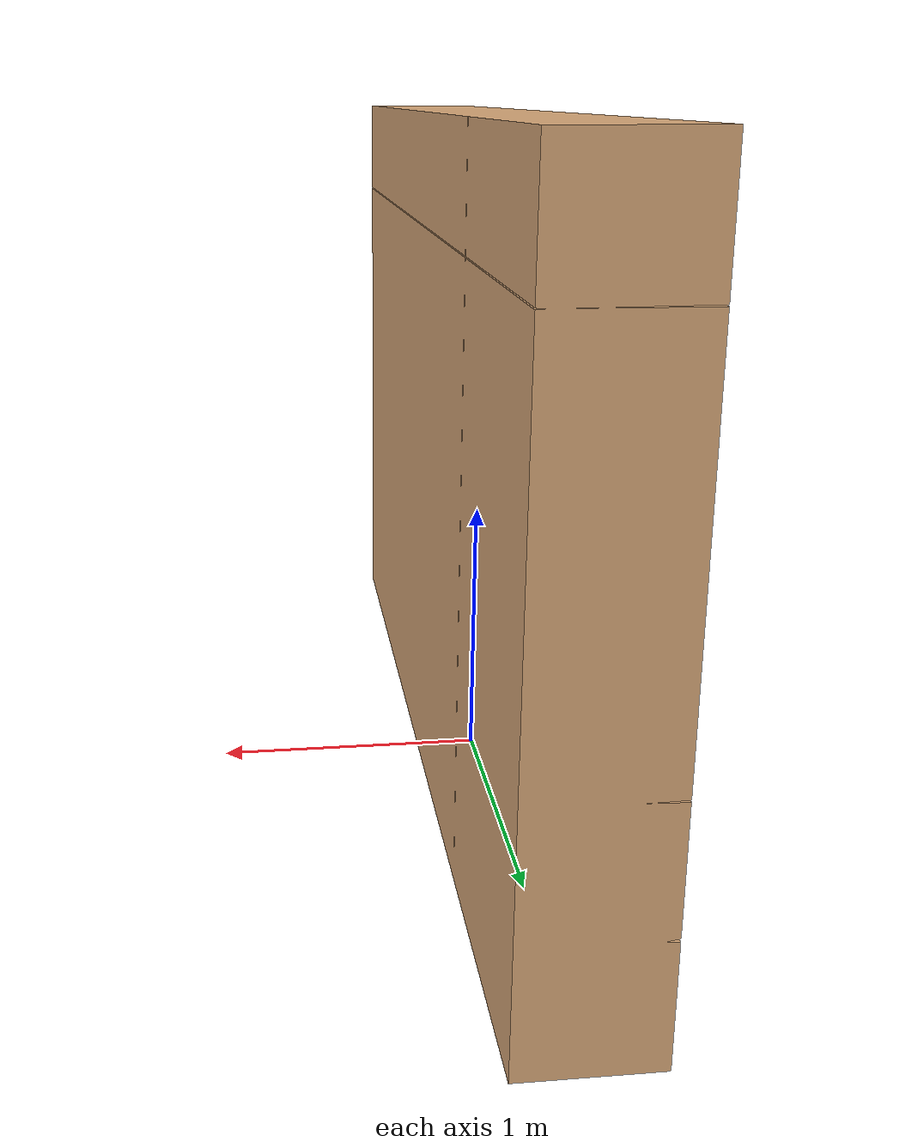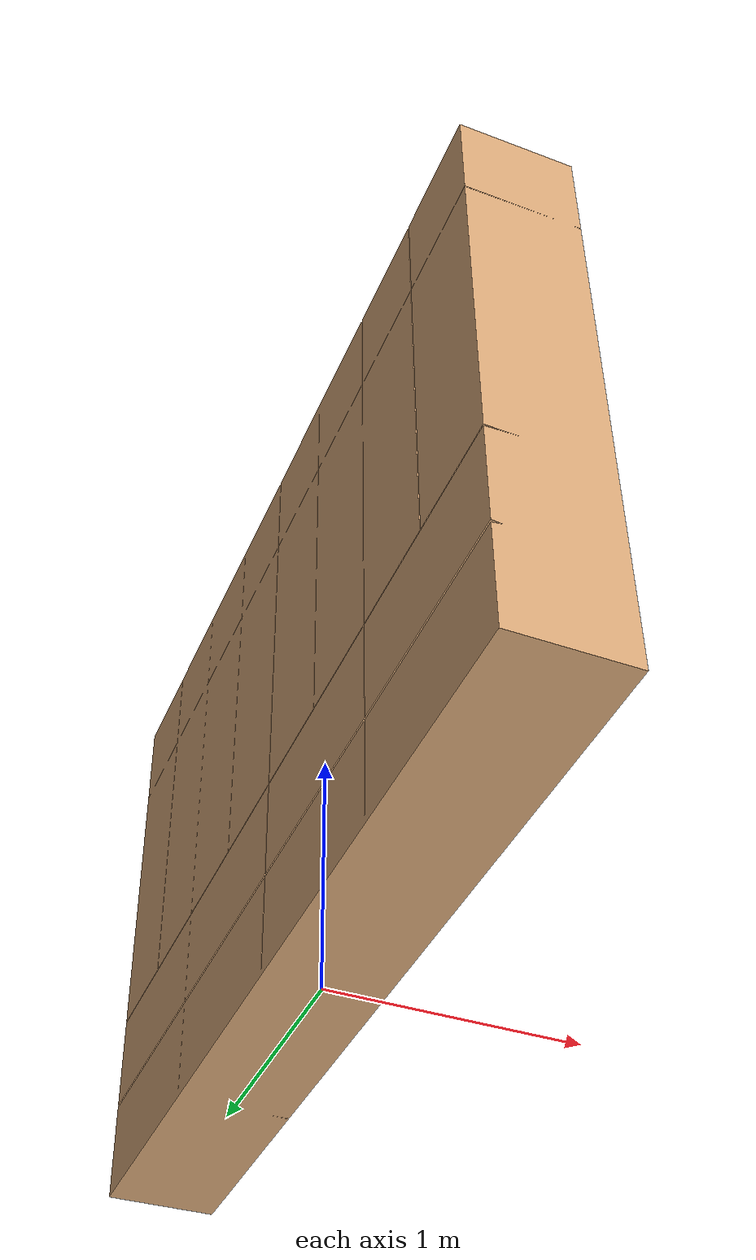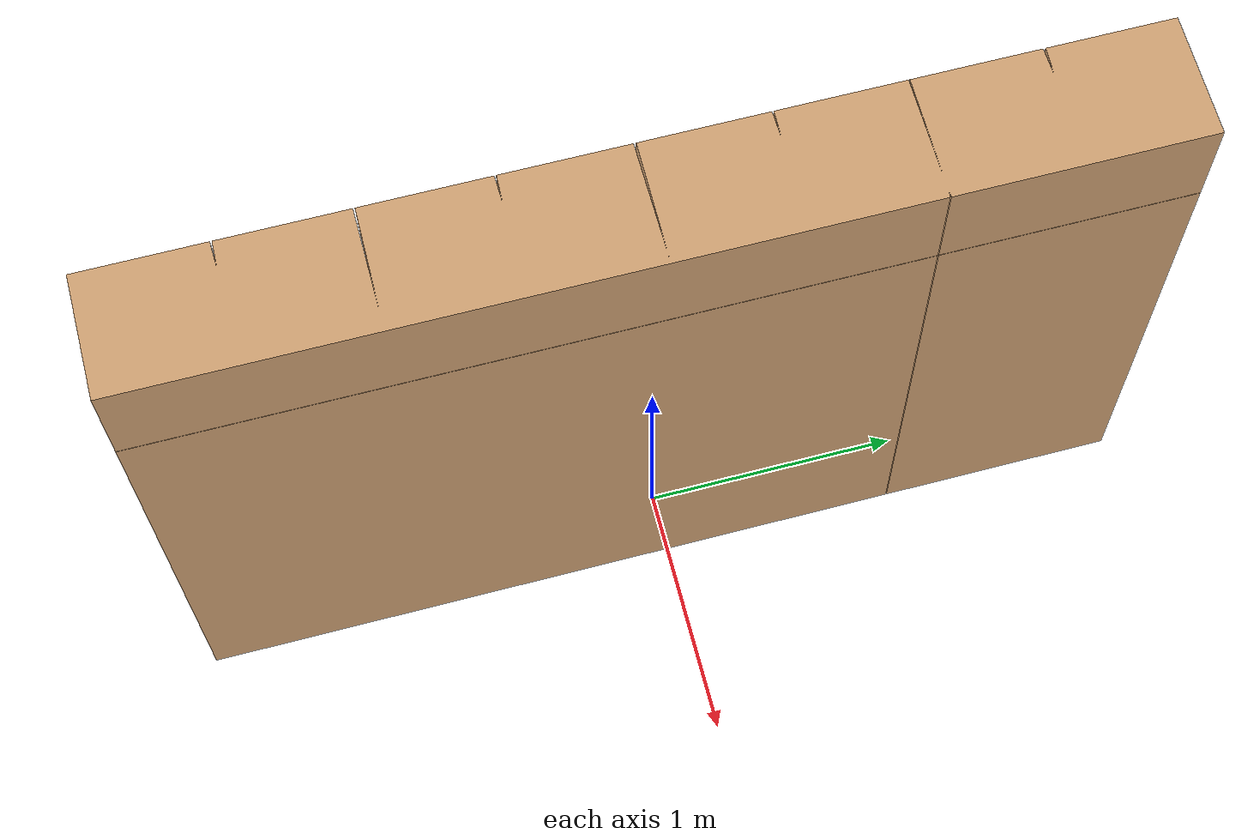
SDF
<?xml version="1.0" ?>
<sdf version="1.6">
  <model name="clf_cupboard_b">
    <static>true</static>
    <link name="link">
      <collision name="collision">
        <geometry>
          <mesh>
            <uri>model://clf_cupboard_b/meshes/clf_cupboard_b.dae</uri>
          </mesh>
        </geometry>
      </collision>
      <visual name="visual">
        <material>
          <ambient>0.86 0.67 0.48 1.0</ambient>
          <diffuse>0.86 0.67 0.48 1.0</diffuse>
          <specular>0 0 0 0</specular>
          <emissive>0 0 0 1</emissive>
        </material>
        <geometry>
          <mesh>
            <uri>model://clf_cupboard_b/meshes/clf_cupboard_b.dae</uri>
          </mesh>
        </geometry>
      </visual>
    </link>
  </model>
</sdf>
